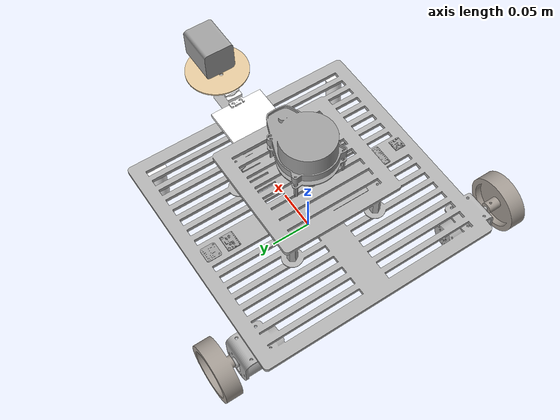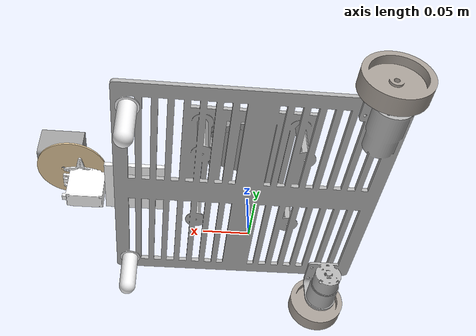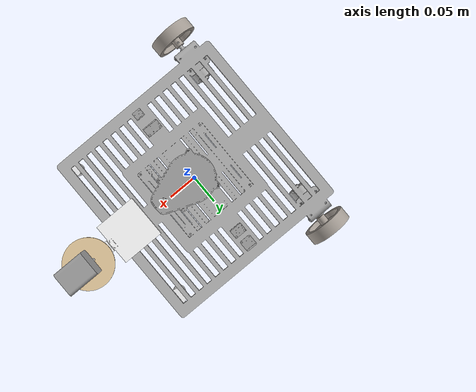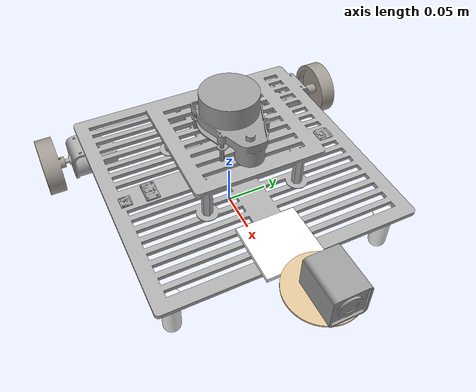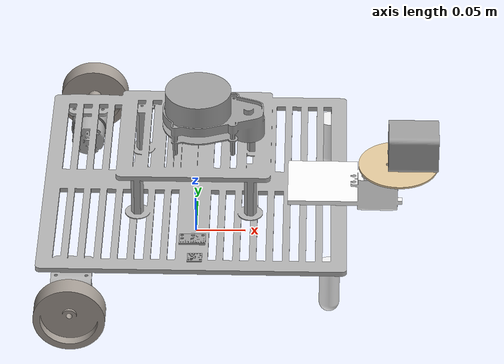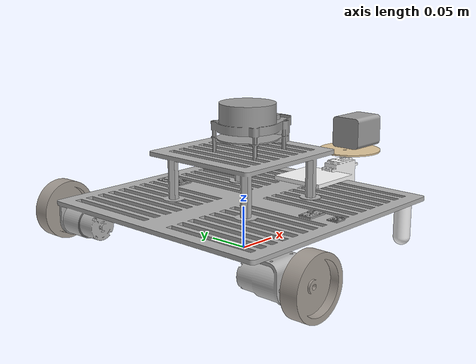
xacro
<?xml version="1.0" ?>
<robot name="test_robot" xmlns:xacro="http://www.ros.org/wiki/xacro">

<xacro:include filename="$(find test_robot_description)/urdf/materials.xacro" />
<xacro:include filename="$(find test_robot_description)/urdf/test_robot.trans" />
<xacro:include filename="$(find test_robot_description)/urdf/test_robot.gazebo" />
<link name="base_link">
  <inertial>
    <origin xyz="-0.020632171778688 0.002500000000000126 0.07232033801694421" rpy="0 0 0"/>
    <mass value="1.7085553050360842"/>
    <inertia ixx="0.01599" iyy="0.013053" izz="0.025491" ixy="1e-06" iyz="0.0" ixz="-0.001461"/>
  </inertial>
  <visual>
    <origin xyz="0 0 0" rpy="0 0 0"/>
    <geometry>
      <mesh filename="package://test_robot_description/meshes/base_link.stl" scale="0.001 0.001 0.001"/>
    </geometry>
    <material name="silver_default"/>
  </visual>
  <collision>
    <origin xyz="0 0 0" rpy="0 0 0"/>
    <geometry>
      <mesh filename="package://test_robot_description/meshes/base_link.stl" scale="0.001 0.001 0.001"/>
    </geometry>
  </collision>
</link>

<link name="right_wheel">
  <inertial>
    <origin xyz="-3.4200742424217445e-07 -0.0073158880868150755 -4.197731875474342e-06" rpy="0 0 0"/>
    <mass value="0.04524129578745742"/>
    <inertia ixx="2.1e-05" iyy="3.8e-05" izz="2.1e-05" ixy="-0.0" iyz="0.0" ixz="-0.0"/>
  </inertial>
  <visual>
    <origin xyz="0.116382 0.183454 -0.035" rpy="0 0 0"/>
    <geometry>
      <mesh filename="package://test_robot_description/meshes/right_wheel_1.stl" scale="0.001 0.001 0.001"/>
    </geometry>
    <material name="opaque166158150"/>
  </visual>
  <collision>
    <origin xyz="0.116382 0.183454 -0.035" rpy="0 0 0"/>
    <geometry>
      <mesh filename="package://test_robot_description/meshes/right_wheel_1.stl" scale="0.001 0.001 0.001"/>
    </geometry>
  </collision>
</link>

<link name="left_wheel">
  <inertial>
    <origin xyz="3.4200744483681156e-07 0.007315888086814659 3.864337692033315e-06" rpy="0 0 0"/>
    <mass value="0.04524129578745742"/>
    <inertia ixx="2.1e-05" iyy="3.8e-05" izz="2.1e-05" ixy="0.0" iyz="0.0" ixz="0.0"/>
  </inertial>
  <visual>
    <origin xyz="0.116418 -0.188454 -0.035" rpy="0 0 0"/>
    <geometry>
      <mesh filename="package://test_robot_description/meshes/left_wheel_1.stl" scale="0.001 0.001 0.001"/>
    </geometry>
    <material name="opaque166158150"/>
  </visual>
  <collision>
    <origin xyz="0.116418 -0.188454 -0.035" rpy="0 0 0"/>
    <geometry>
      <mesh filename="package://test_robot_description/meshes/left_wheel_1.stl" scale="0.001 0.001 0.001"/>
    </geometry>
  </collision>
</link>

<link name="left_castor">
  <inertial>
    <origin xyz="-0.015000000000078645 -0.01999999999999974 -0.025454061421393108" rpy="0 0 0"/>
    <mass value="0.04403091329657134"/>
    <inertia ixx="1.1e-05" iyy="1.1e-05" izz="2e-06" ixy="0.0" iyz="0.0" ixz="0.0"/>
  </inertial>
  <visual>
    <origin xyz="-0.1474 -0.1499 -0.05468" rpy="0 0 0"/>
    <geometry>
      <mesh filename="package://test_robot_description/meshes/left_castor_1.stl" scale="0.001 0.001 0.001"/>
    </geometry>
    <material name="aluminum_satin"/>
  </visual>
  <collision>
    <origin xyz="-0.1474 -0.1499 -0.05468" rpy="0 0 0"/>
    <geometry>
      <mesh filename="package://test_robot_description/meshes/left_castor_1.stl" scale="0.001 0.001 0.001"/>
    </geometry>
  </collision>
</link>

<link name="right_castor">
  <inertial>
    <origin xyz="-0.015000000000078367 0.019999999999999976 -0.025454061421393216" rpy="0 0 0"/>
    <mass value="0.04403091329657134"/>
    <inertia ixx="1.1e-05" iyy="1.1e-05" izz="2e-06" ixy="-0.0" iyz="-0.0" ixz="0.0"/>
  </inertial>
  <visual>
    <origin xyz="-0.1474 0.1449 -0.05468" rpy="0 0 0"/>
    <geometry>
      <mesh filename="package://test_robot_description/meshes/right_castor_1.stl" scale="0.001 0.001 0.001"/>
    </geometry>
    <material name="aluminum_satin"/>
  </visual>
  <collision>
    <origin xyz="-0.1474 0.1449 -0.05468" rpy="0 0 0"/>
    <geometry>
      <mesh filename="package://test_robot_description/meshes/right_castor_1.stl" scale="0.001 0.001 0.001"/>
    </geometry>
  </collision>
</link>

<link name="ydlidar_x4">
  <inertial>
    <origin xyz="0.008294099570319522 -3.8163916471489756e-17 0.034201142222791026" rpy="0 0 0"/>
    <mass value="1.1515616542314233"/>
    <inertia ixx="0.000489" iyy="0.000861" izz="0.000987" ixy="-0.0" iyz="0.0" ixz="0.000148"/>
  </inertial>
  <visual>
    <origin xyz="-0.0 -0.0025 -0.16668" rpy="0 0 0"/>
    <geometry>
      <mesh filename="package://test_robot_description/meshes/ydlidar_x4_1.stl" scale="0.001 0.001 0.001"/>
    </geometry>
    <material name="steel_satin"/>
  </visual>
  <collision>
    <origin xyz="-0.0 -0.0025 -0.11668" rpy="0 0 0"/>
    <geometry>
      <mesh filename="package://test_robot_description/meshes/ydlidar_x4_1.stl" scale="0.001 0.001 0.001"/>
    </geometry>
  </collision>
</link>

<link name="servo_mount">
  <inertial>
    <origin xyz="0.022810444394987556 -1.5494500209788098e-09 -0.0026926680941401007" rpy="0 0 0"/>
    <mass value="0.28990445760104805"/>
    <inertia ixx="5.9e-05" iyy="0.00017" izz="0.000152" ixy="0.0" iyz="-0.0" ixz="6e-06"/>
  </inertial>
  <visual>
    <origin xyz="-0.1524 -0.0025 -0.05968" rpy="0 0 0"/>
    <geometry>
      <mesh filename="package://test_robot_description/meshes/servo_mount_1.stl" scale="0.001 0.001 0.001"/>
    </geometry>
    <material name="acrylic_clear"/>
  </visual>
  <collision>
    <origin xyz="-0.1524 -0.0025 -0.05968" rpy="0 0 0"/>
    <geometry>
      <mesh filename="package://test_robot_description/meshes/servo_mount_1.stl" scale="0.001 0.001 0.001"/>
    </geometry>
  </collision>
</link>

<link name="camera_mount">
  <inertial>
    <origin xyz="0.009999999999998233 2.0686577451023425e-16 0.0030000000000000304" rpy="0 0 0"/>
    <mass value="0.012966923677691866"/>
    <inertia ixx="5e-06" iyy="5e-06" izz="1e-05" ixy="0.0" iyz="-0.0" ixz="-0.0"/>
  </inertial>
  <visual>
    <origin xyz="-0.19055 -0.0025 -0.08223" rpy="0 0 0"/>
    <geometry>
      <mesh filename="package://test_robot_description/meshes/camera_mount_1.stl" scale="0.001 0.001 0.001"/>
    </geometry>
    <material name="paek_beige"/>
  </visual>
  <collision>
    <origin xyz="-0.19055 -0.0025 -0.08223" rpy="0 0 0"/>
    <geometry>
      <mesh filename="package://test_robot_description/meshes/camera_mount_1.stl" scale="0.001 0.001 0.001"/>
    </geometry>
  </collision>
</link>

<link name="camera">
  <inertial>
    <origin xyz="0.003870092447544521 3.342378457338313e-15 0.022445900256365642" rpy="0 0 0"/>
    <mass value="0.6054290756769216"/>
    <inertia ixx="0.000158" iyy="0.000199" izz="0.000199" ixy="-0.0" iyz="0.0" ixz="-0.0"/>
  </inertial>
  <visual>
    <origin xyz="-0.21055 -0.0025 -0.08623" rpy="0 0 0"/>
    <geometry>
      <mesh filename="package://test_robot_description/meshes/camera_1.stl" scale="0.001 0.001 0.001"/>
    </geometry>
    <material name="steel_satin"/>
  </visual>
  <collision>
    <origin xyz="-0.21055 -0.0025 -0.08623" rpy="0 0 0"/>
    <geometry>
      <mesh filename="package://test_robot_description/meshes/camera_1.stl" scale="0.001 0.001 0.001"/>
    </geometry>
  </collision>
</link>

<link name="MPU_6050">
  <inertial>
    <origin xyz="-3.1355336134285696e-05 -0.050012226392699075 0.0009153763215413793" rpy="0 0 0"/>
    <mass value="0.004148060593361584"/>
    <inertia ixx="0.0" iyy="0.0" izz="0.0" ixy="-0.0" iyz="-0.0" ixz="0.0"/>
  </inertial>
  <visual>
    <origin xyz="0.0 -0.1549 -0.05968" rpy="0 0 0"/>
    <geometry>
      <mesh filename="package://test_robot_description/meshes/MPU_6050_1.stl" scale="0.001 0.001 0.001"/>
    </geometry>
    <material name="steel_satin"/>
  </visual>
  <collision>
    <origin xyz="0.0 -0.1549 -0.05968" rpy="0 0 0"/>
    <geometry>
      <mesh filename="package://test_robot_description/meshes/MPU_6050_1.stl" scale="0.001 0.001 0.001"/>
    </geometry>
  </collision>
</link>

<link name="ADXL335">
  <inertial>
    <origin xyz="4.6126231438677886e-05 -0.025102857569161613 0.0004384677831028097" rpy="0 0 0"/>
    <mass value="0.0022661803844448835"/>
    <inertia ixx="0.0" iyy="0.0" izz="0.0" ixy="0.0" iyz="0.0" ixz="-0.0"/>
  </inertial>
  <visual>
    <origin xyz="0.0 -0.1549 -0.05968" rpy="0 0 0"/>
    <geometry>
      <mesh filename="package://test_robot_description/meshes/ADXL335_1.stl" scale="0.001 0.001 0.001"/>
    </geometry>
    <material name="steel_satin"/>
  </visual>
  <collision>
    <origin xyz="0.0 -0.1549 -0.05968" rpy="0 0 0"/>
    <geometry>
      <mesh filename="package://test_robot_description/meshes/ADXL335_1.stl" scale="0.001 0.001 0.001"/>
    </geometry>
  </collision>
</link>

<link name="MPU_9250">
  <inertial>
    <origin xyz="-4.0745935269562253e-05 0.049982746308101816 0.0010543416597268984" rpy="0 0 0"/>
    <mass value="0.006431034767624054"/>
    <inertia ixx="0.0" iyy="0.0" izz="0.0" ixy="-0.0" iyz="-0.0" ixz="0.0"/>
  </inertial>
  <visual>
    <origin xyz="-0.0 0.1499 -0.05968" rpy="0 0 0"/>
    <geometry>
      <mesh filename="package://test_robot_description/meshes/MPU_9250_1.stl" scale="0.001 0.001 0.001"/>
    </geometry>
    <material name="steel_satin"/>
  </visual>
  <collision>
    <origin xyz="-0.0 0.1499 -0.05968" rpy="0 0 0"/>
    <geometry>
      <mesh filename="package://test_robot_description/meshes/MPU_9250_1.stl" scale="0.001 0.001 0.001"/>
    </geometry>
  </collision>
</link>

<link name="QMC5883">
  <inertial>
    <origin xyz="3.957074476157516e-05 0.02470495460938099 0.0007776122652584164" rpy="0 0 0"/>
    <mass value="0.0022004092587126446"/>
    <inertia ixx="0.0" iyy="0.0" izz="0.0" ixy="0.0" iyz="0.0" ixz="-0.0"/>
  </inertial>
  <visual>
    <origin xyz="-0.0 0.1499 -0.05968" rpy="0 0 0"/>
    <geometry>
      <mesh filename="package://test_robot_description/meshes/QMC5883_1.stl" scale="0.001 0.001 0.001"/>
    </geometry>
    <material name="steel_satin"/>
  </visual>
  <collision>
    <origin xyz="-0.0 0.1499 -0.05968" rpy="0 0 0"/>
    <geometry>
      <mesh filename="package://test_robot_description/meshes/QMC5883_1.stl" scale="0.001 0.001 0.001"/>
    </geometry>
  </collision>
</link>

<joint name="right_drive" type="continuous">
  <origin xyz="-0.116382 -0.183454 0.035" rpy="0 0 0"/>
  <parent link="base_link"/>
  <child link="right_wheel"/>
  <axis xyz="0.0 1.0 -0.0"/>
</joint>

<joint name="left_drive" type="continuous">
  <origin xyz="-0.116418 0.188454 0.035" rpy="0 0 0"/>
  <parent link="base_link"/>
  <child link="left_wheel"/>
  <axis xyz="-0.0 1.0 0.0"/>
</joint>

<joint name="Rigid 3" type="fixed">
  <origin xyz="0.1474 0.1499 0.05468" rpy="0 0 0"/>
  <parent link="base_link"/>
  <child link="left_castor"/>
</joint>

<joint name="Rigid 4" type="fixed">
  <origin xyz="0.1474 -0.1449 0.05468" rpy="0 0 0"/>
  <parent link="base_link"/>
  <child link="right_castor"/>
</joint>

<joint name="Rigid 5" type="fixed">
  <origin xyz="0.0 0.0025 0.16668" rpy="0 0 0"/>
  <parent link="base_link"/>
  <child link="ydlidar_x4"/>
</joint>

<joint name="Rigid 6" type="fixed">
  <origin xyz="0.1524 0.0025 0.05968" rpy="0 0 0"/>
  <parent link="base_link"/>
  <child link="servo_mount"/>
</joint>

<joint name="camera_joint" type="continuous">
  <origin xyz="0.03815 0.0 0.02255" rpy="0 0 0"/>
  <parent link="servo_mount"/>
  <child link="camera_mount"/>
  <axis xyz="0.0 -0.0 1.0"/>
</joint>

<joint name="Rigid 9" type="fixed">
  <origin xyz="0.02 0.0 0.004" rpy="0 0 0"/>
  <parent link="camera_mount"/>
  <child link="camera"/>
</joint>

<joint name="Rigid 10" type="fixed">
  <origin xyz="0.0 0.1549 0.05968" rpy="0 0 0"/>
  <parent link="base_link"/>
  <child link="MPU_6050"/>
</joint>

<joint name="Rigid 11" type="fixed">
  <origin xyz="0.0 0.1549 0.05968" rpy="0 0 0"/>
  <parent link="base_link"/>
  <child link="ADXL335"/>
</joint>

<joint name="Rigid 12" type="fixed">
  <origin xyz="0.0 -0.1499 0.05968" rpy="0 0 0"/>
  <parent link="base_link"/>
  <child link="MPU_9250"/>
</joint>

<joint name="Rigid 13" type="fixed">
  <origin xyz="0.0 -0.1499 0.05968" rpy="0 0 0"/>
  <parent link="base_link"/>
  <child link="QMC5883"/>
</joint>

</robot>

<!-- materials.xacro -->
<robot name="test_robot" xmlns:xacro="http://www.ros.org/wiki/xacro" >

<material name="silver_default">
  <color rgba="0.700 0.700 0.700 1.000"/>
</material>
<material name="opaque166158150">
  <color rgba="0.6509803921568628 0.6196078431372549 0.5882352941176471 1.0"/>
</material>
<material name="aluminum_satin">
  <color rgba="0.9607843137254902 0.9607843137254902 0.9647058823529412 1.0"/>
</material>
<material name="steel_satin">
  <color rgba="0.6274509803921569 0.6274509803921569 0.6274509803921569 1.0"/>
</material>
<material name="acrylic_clear">
  <color rgba="1.0 1.0 1.0 1.0"/>
</material>
<material name="paek_beige">
  <color rgba="0.8980392156862745 0.792156862745098 0.6196078431372549 1.0"/>
</material>

</robot>

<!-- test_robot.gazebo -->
<robot name="test_robot" xmlns:xacro="http://www.ros.org/wiki/xacro" >

<xacro:property name="body_color" value="Gazebo/Silver" />

<gazebo>
  <plugin name="control" filename="libgazebo_ros_control.so"/>
</gazebo>
<gazebo reference="base_link">
  <material>${body_color}</material>
  <mu1>0.2</mu1>
  <mu2>0.2</mu2>
  <selfCollide>true</selfCollide>
  <gravity>true</gravity>
</gazebo>

<gazebo reference="right_wheel">
  <material>Gazebo/Black</material>
  <mu1>100</mu1>
  <mu2>100</mu2>
  <selfCollide>true</selfCollide>
</gazebo>

<gazebo reference="left_wheel">
  <material>Gazebo/Black</material>
  <mu1>100</mu1>
  <mu2>100</mu2>
  <selfCollide>true</selfCollide>
</gazebo>

<gazebo reference="left_castor">
  <material>${body_color}</material>
  <mu1>0.2</mu1>
  <mu2>0.2</mu2>
  <selfCollide>true</selfCollide>
</gazebo>

<gazebo reference="right_castor">
  <material>${body_color}</material>
  <mu1>0.2</mu1>
  <mu2>0.2</mu2>
  <selfCollide>true</selfCollide>
</gazebo>

<gazebo reference="ydlidar_x4">
  <material>Gazebo/Blue</material>
  <mu1>0.2</mu1>
  <mu2>0.2</mu2>
  <selfCollide>true</selfCollide>
</gazebo>

<gazebo reference="servo_mount">
  <material>Gazebo/Grey</material>
  <mu1>0.2</mu1>
  <mu2>0.2</mu2>
  <selfCollide>true</selfCollide>
</gazebo>

<gazebo reference="camera_mount">
  <material>Gazebo/Yellow</material>
  <mu1>0.2</mu1>
  <mu2>0.2</mu2>
  <selfCollide>true</selfCollide>
</gazebo>

<gazebo reference="camera">
  <material>Gazebo/Red</material>
  <mu1>0.2</mu1>
  <mu2>0.2</mu2>
  <selfCollide>true</selfCollide>
</gazebo>

<gazebo reference="MPU_6050">
  <material>Gazebo/Turquoise</material>
  <mu1>0.2</mu1>
  <mu2>0.2</mu2>
  <selfCollide>true</selfCollide>
</gazebo>

<gazebo reference="ADXL335">
  <material>Gazebo/Blue</material>
  <mu1>0.2</mu1>
  <mu2>0.2</mu2>
  <selfCollide>true</selfCollide>
</gazebo>

<gazebo reference="MPU_9250">
  <material>Gazebo/Blue</material>
  <mu1>0.2</mu1>
  <mu2>0.2</mu2>
  <selfCollide>true</selfCollide>
</gazebo>

<gazebo reference="QMC5883">
  <material>Gazebo/SkyBlue</material>
  <mu1>0.2</mu1>
  <mu2>0.2</mu2>
  <selfCollide>true</selfCollide>
</gazebo>

<gazebo>
  <plugin name="differential_drive_controller" filename="libgazebo_ros_diff_drive.so">

    <!-- Plugin update rate in Hz -->
    <updateRate>50</updateRate>

    <!-- Name of left joint, defaults to `left_joint` -->
    <leftJoint>left_drive</leftJoint>

    <!-- Name of right joint, defaults to `right_joint` -->
    <rightJoint>right_drive</rightJoint>

    <!-- The distance from the center of one wheel to the other, in meters, defaults to 0.34 m -->
    <wheelSeparation>0.387908</wheelSeparation>

    <!-- Diameter of the wheels, in meters, defaults to 0.15 m -->
    <wheelDiameter>0.07</wheelDiameter>

    <!-- Wheel acceleration, in rad/s^2, defaults to 0.0 rad/s^2 -->
    <wheelAcceleration>1.0</wheelAcceleration>

    <!-- Maximum torque which the wheels can produce, in Nm, defaults to 5 Nm -->
    <wheelTorque>20</wheelTorque>

    <!-- Topic to receive geometry_msgs/Twist message commands, defaults to `cmd_vel` -->
    <commandTopic>cmd_vel</commandTopic>

    <!-- Topic to publish nav_msgs/Odometry messages, defaults to `odom` -->
    <odometryTopic>odom</odometryTopic>

    <!-- Odometry frame, defaults to `odom` -->
    <odometryFrame>odom</odometryFrame>

    <!-- Robot frame to calculate odometry from, defaults to `base_footprint` -->
    <robotBaseFrame>base_link</robotBaseFrame>

    <!-- Odometry source, 0 for ENCODER, 1 for WORLD, defaults to WORLD -->
    <odometrySource>1</odometrySource>

    <!-- Set to true to publish transforms for the wheel links, defaults to false -->
    <publishWheelTF>false</publishWheelTF>

    <!-- Set to true to publish transforms for the odometry, defaults to true -->
    <publishOdom>true</publishOdom>

    <!-- Set to true to publish sensor_msgs/JointState on /joint_states for the wheel joints, defaults to false -->
    <publishWheelJointState>true</publishWheelJointState>

    <!-- Set to true to swap right and left wheels, defaults to true -->
    <legacyMode>false</legacyMode>
  </plugin>
</gazebo>

  <!-- camera -->
  <gazebo reference="camera">
    <sensor type="camera" name="camera">
      <update_rate>30.0</update_rate>
      <camera name="head">
        <horizontal_fov>1.3962634</horizontal_fov>
        <image>
          <width>800</width>
          <height>800</height>
          <format>R8G8B8</format>
        </image>
        <clip>
          <near>0.2</near>
          <far>300</far>
        </clip>
        <noise>
          <type>gaussian</type>
          <!-- Noise is sampled independently per pixel on each frame.
               That pixel's noise value is added to each of its color
               channels, which at that point lie in the range [0,1]. -->
          <mean>0.0</mean>
          <stddev>0.007</stddev>
        </noise>
      </camera>
      <plugin name="camera_controller" filename="libgazebo_ros_camera.so">
        <alwaysOn>true</alwaysOn>
        <updateRate>0.0</updateRate>
        <cameraName>camera</cameraName>
        <imageTopicName>image_raw</imageTopicName>
        <cameraInfoTopicName>camera_info</cameraInfoTopicName>
        <frameName>camera</frameName>
        <hackBaseline>0.07</hackBaseline>
        <distortionK1>0.0</distortionK1>
        <distortionK2>0.0</distortionK2>
        <distortionK3>0.0</distortionK3>
        <distortionT1>0.0</distortionT1>
        <distortionT2>0.0</distortionT2>
      </plugin>
    </sensor>
  </gazebo>

  <!-- hokuyo -->
  <gazebo reference="ydlidar_x4">
    <sensor type="ray" name="head_hokuyo_sensor">
      <pose>0 0 0 0 0 0</pose>
      <visualize>false</visualize>
      <update_rate>40</update_rate>
      <ray>
        <scan>
          <horizontal>
            <samples>720</samples>
            <resolution>1</resolution>
            <min_angle>-3.141528</min_angle>
            <max_angle>3.141528</max_angle>
          </horizontal>
        </scan>
        <range>
          <min>0.05</min>
          <max>10.0</max>
          <resolution>0.05</resolution>
        </range>
        <noise>
          <type>gaussian</type>
          <mean>0.0</mean>
          <stddev>0.01</stddev>
        </noise>
      </ray>
      <plugin name="gazebo_ros_head_hokuyo_controller" filename="libgazebo_ros_laser.so">
        <topicName>/scan</topicName>
        <frameName>ydlidar_x4</frameName>
      </plugin>
    </sensor>
  </gazebo>

  <gazebo reference="MPU_9250">
    <gravity>true</gravity>
    <sensor name="imu_sensor" type="imu">
      <always_on>true</always_on>
      <update_rate>100</update_rate>
      <visualize>true</visualize>
      <topic>__default_topic__</topic>
      <plugin filename="libgazebo_ros_imu_sensor.so" name="imu_plugin">
        <topicName>MPU_9250/imu</topicName>
        <bodyName>MPU_9250</bodyName>
        <updateRateHZ>20.0</updateRateHZ>
        <gaussianNoise>0.0</gaussianNoise>
        <xyzOffset>0 0 0</xyzOffset>
        <rpyOffset>0 0 0</rpyOffset>
        <frameName>MPU_9250</frameName>
        <initialOrientationAsReference>false</initialOrientationAsReference>
      </plugin>
      <pose>0 0 0 0 0 0</pose>
    </sensor>
  </gazebo>

</robot>
